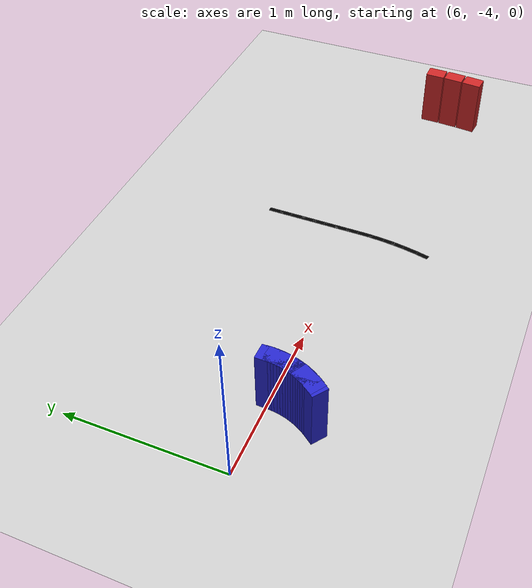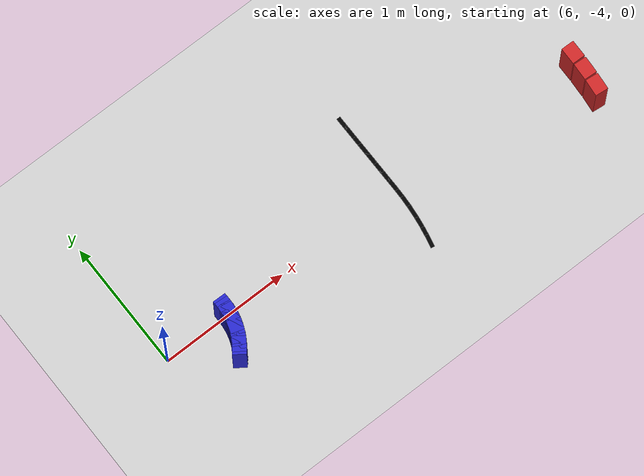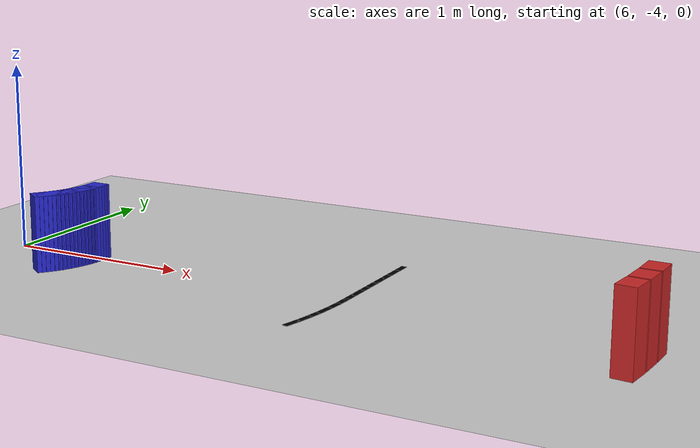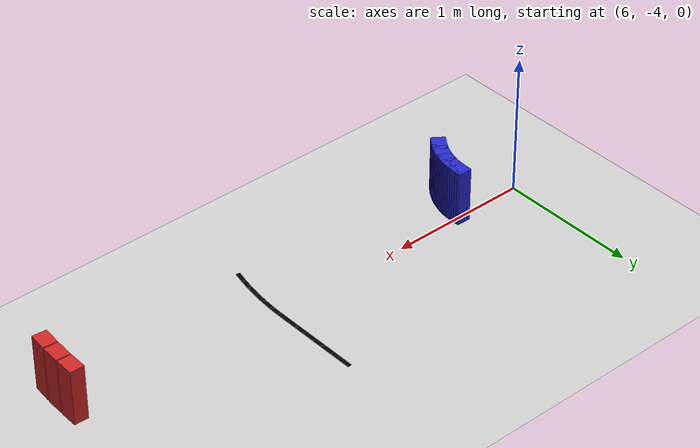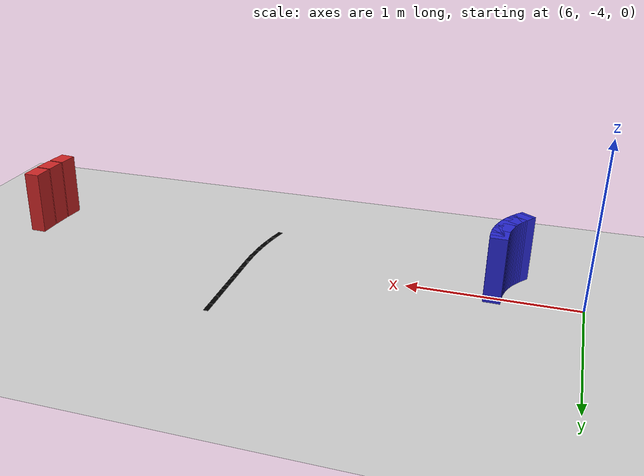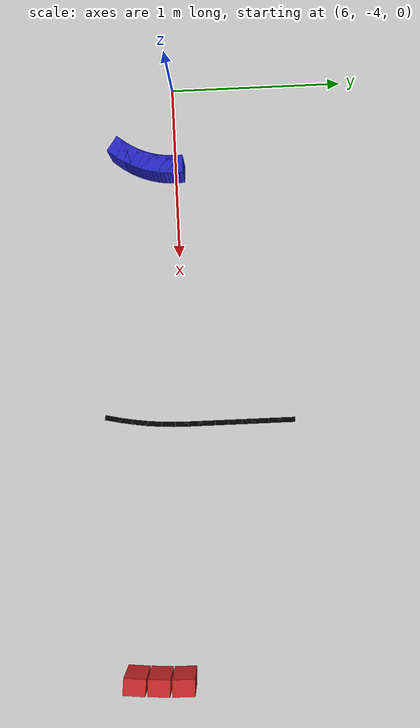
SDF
<sdf version="1.6">
 <world name="new_race_track">
  <include><uri>model://ground_plane</uri></include>
  <include><uri>model://sun</uri></include>
  <model name="race_track">
   <static>true</static>
   <link name="wall_link_223">
    <collision name="c"><geometry><box><size>0.1305 0.1 0.4</size></box></geometry></collision>
    <visual name="v">
     <geometry><box><size>0.1305 0.1 0.4</size></box></geometry>
     <material><ambient>0.15 0.15 0.8 1</ambient><diffuse>0.15 0.15 0.8 1</diffuse></material>
    </visual>
    <pose>6.4054 -4.2920 0.200 0 0 0.9465</pose>
   </link>
   <link name="wall_link_224">
    <collision name="c"><geometry><box><size>0.1305 0.1 0.4</size></box></geometry></collision>
    <visual name="v">
     <geometry><box><size>0.1305 0.1 0.4</size></box></geometry>
     <material><ambient>0.15 0.15 0.8 1</ambient><diffuse>0.15 0.15 0.8 1</diffuse></material>
    </visual>
    <pose>6.4168 -4.2755 0.200 0 0 0.9868</pose>
   </link>
   <link name="wall_link_225">
    <collision name="c"><geometry><box><size>0.1305 0.1 0.4</size></box></geometry></collision>
    <visual name="v">
     <geometry><box><size>0.1305 0.1 0.4</size></box></geometry>
     <material><ambient>0.15 0.15 0.8 1</ambient><diffuse>0.15 0.15 0.8 1</diffuse></material>
    </visual>
    <pose>6.4275 -4.2585 0.200 0 0 1.0271</pose>
   </link>
   <link name="wall_link_226">
    <collision name="c"><geometry><box><size>0.1305 0.1 0.4</size></box></geometry></collision>
    <visual name="v">
     <geometry><box><size>0.1305 0.1 0.4</size></box></geometry>
     <material><ambient>0.15 0.15 0.8 1</ambient><diffuse>0.15 0.15 0.8 1</diffuse></material>
    </visual>
    <pose>6.4376 -4.2410 0.200 0 0 1.0673</pose>
   </link>
   <link name="wall_link_227">
    <collision name="c"><geometry><box><size>0.1305 0.1 0.4</size></box></geometry></collision>
    <visual name="v">
     <geometry><box><size>0.1305 0.1 0.4</size></box></geometry>
     <material><ambient>0.15 0.15 0.8 1</ambient><diffuse>0.15 0.15 0.8 1</diffuse></material>
    </visual>
    <pose>6.4470 -4.2232 0.200 0 0 1.1076</pose>
   </link>
   <link name="wall_link_228">
    <collision name="c"><geometry><box><size>0.1305 0.1 0.4</size></box></geometry></collision>
    <visual name="v">
     <geometry><box><size>0.1305 0.1 0.4</size></box></geometry>
     <material><ambient>0.15 0.15 0.8 1</ambient><diffuse>0.15 0.15 0.8 1</diffuse></material>
    </visual>
    <pose>6.4556 -4.2050 0.200 0 0 1.1479</pose>
   </link>
   <link name="wall_link_229">
    <collision name="c"><geometry><box><size>0.1305 0.1 0.4</size></box></geometry></collision>
    <visual name="v">
     <geometry><box><size>0.1305 0.1 0.4</size></box></geometry>
     <material><ambient>0.15 0.15 0.8 1</ambient><diffuse>0.15 0.15 0.8 1</diffuse></material>
    </visual>
    <pose>6.4635 -4.1865 0.200 0 0 1.1882</pose>
   </link>
   <link name="wall_link_230">
    <collision name="c"><geometry><box><size>0.1305 0.1 0.4</size></box></geometry></collision>
    <visual name="v">
     <geometry><box><size>0.1305 0.1 0.4</size></box></geometry>
     <material><ambient>0.15 0.15 0.8 1</ambient><diffuse>0.15 0.15 0.8 1</diffuse></material>
    </visual>
    <pose>6.4706 -4.1677 0.200 0 0 1.2284</pose>
   </link>
   <link name="wall_link_231">
    <collision name="c"><geometry><box><size>0.1305 0.1 0.4</size></box></geometry></collision>
    <visual name="v">
     <geometry><box><size>0.1305 0.1 0.4</size></box></geometry>
     <material><ambient>0.15 0.15 0.8 1</ambient><diffuse>0.15 0.15 0.8 1</diffuse></material>
    </visual>
    <pose>6.4770 -4.1486 0.200 0 0 1.2687</pose>
   </link>
   <link name="wall_link_232">
    <collision name="c"><geometry><box><size>0.1305 0.1 0.4</size></box></geometry></collision>
    <visual name="v">
     <geometry><box><size>0.1305 0.1 0.4</size></box></geometry>
     <material><ambient>0.15 0.15 0.8 1</ambient><diffuse>0.15 0.15 0.8 1</diffuse></material>
    </visual>
    <pose>6.4826 -4.1293 0.200 0 0 1.3090</pose>
   </link>
   <link name="wall_link_233">
    <collision name="c"><geometry><box><size>0.1305 0.1 0.4</size></box></geometry></collision>
    <visual name="v">
     <geometry><box><size>0.1305 0.1 0.4</size></box></geometry>
     <material><ambient>0.15 0.15 0.8 1</ambient><diffuse>0.15 0.15 0.8 1</diffuse></material>
    </visual>
    <pose>6.4874 -4.1098 0.200 0 0 1.3493</pose>
   </link>
   <link name="wall_link_234">
    <collision name="c"><geometry><box><size>0.1305 0.1 0.4</size></box></geometry></collision>
    <visual name="v">
     <geometry><box><size>0.1305 0.1 0.4</size></box></geometry>
     <material><ambient>0.15 0.15 0.8 1</ambient><diffuse>0.15 0.15 0.8 1</diffuse></material>
    </visual>
    <pose>6.4914 -4.0901 0.200 0 0 1.3896</pose>
   </link>
   <link name="wall_link_235">
    <collision name="c"><geometry><box><size>0.1305 0.1 0.4</size></box></geometry></collision>
    <visual name="v">
     <geometry><box><size>0.1305 0.1 0.4</size></box></geometry>
     <material><ambient>0.15 0.15 0.8 1</ambient><diffuse>0.15 0.15 0.8 1</diffuse></material>
    </visual>
    <pose>6.4946 -4.0702 0.200 0 0 1.4298</pose>
   </link>
   <link name="wall_link_236">
    <collision name="c"><geometry><box><size>0.1305 0.1 0.4</size></box></geometry></collision>
    <visual name="v">
     <geometry><box><size>0.1305 0.1 0.4</size></box></geometry>
     <material><ambient>0.15 0.15 0.8 1</ambient><diffuse>0.15 0.15 0.8 1</diffuse></material>
    </visual>
    <pose>6.4971 -4.0502 0.200 0 0 1.4701</pose>
   </link>
   <link name="wall_link_237">
    <collision name="c"><geometry><box><size>0.1305 0.1 0.4</size></box></geometry></collision>
    <visual name="v">
     <geometry><box><size>0.1305 0.1 0.4</size></box></geometry>
     <material><ambient>0.15 0.15 0.8 1</ambient><diffuse>0.15 0.15 0.8 1</diffuse></material>
    </visual>
    <pose>6.4987 -4.0302 0.200 0 0 1.5104</pose>
   </link>
   <link name="wall_link_238">
    <collision name="c"><geometry><box><size>0.1305 0.1 0.4</size></box></geometry></collision>
    <visual name="v">
     <geometry><box><size>0.1305 0.1 0.4</size></box></geometry>
     <material><ambient>0.15 0.15 0.8 1</ambient><diffuse>0.15 0.15 0.8 1</diffuse></material>
    </visual>
    <pose>6.4995 -4.0101 0.200 0 0 1.5507</pose>
   </link>
   <link name="wall_link_648">
    <collision name="c"><geometry><box><size>0.1305 0.1 0.4</size></box></geometry></collision>
    <visual name="v">
     <geometry><box><size>0.1305 0.1 0.4</size></box></geometry>
     <material><ambient>0.8 0.15 0.15 1</ambient><diffuse>0.8 0.15 0.15 1</diffuse></material>
    </visual>
    <pose>9.4819 -4.3518 0.200 0 0 1.4701</pose>
   </link>
   <link name="wall_link_649">
    <collision name="c"><geometry><box><size>0.1305 0.1 0.4</size></box></geometry></collision>
    <visual name="v">
     <geometry><box><size>0.1305 0.1 0.4</size></box></geometry>
     <material><ambient>0.8 0.15 0.15 1</ambient><diffuse>0.8 0.15 0.15 1</diffuse></material>
    </visual>
    <pose>9.4932 -4.2113 0.200 0 0 1.5104</pose>
   </link>
   <link name="wall_link_650">
    <collision name="c"><geometry><box><size>0.1305 0.1 0.4</size></box></geometry></collision>
    <visual name="v">
     <geometry><box><size>0.1305 0.1 0.4</size></box></geometry>
     <material><ambient>0.8 0.15 0.15 1</ambient><diffuse>0.8 0.15 0.15 1</diffuse></material>
    </visual>
    <pose>9.4989 -4.0705 0.200 0 0 1.5507</pose>
   </link>
   <link name="line_link_1214">
    <visual name="v">
     <geometry><box><size>0.1005 0.03 0.002</size></box></geometry>
     <material><ambient>0 0 0 1</ambient><diffuse>0 0 0 1</diffuse></material>
    </visual>
    <pose>7.9507 -4.4393 0.002 0 0 1.3493</pose>
   </link>
   <link name="line_link_1215">
    <visual name="v">
     <geometry><box><size>0.1005 0.03 0.002</size></box></geometry>
     <material><ambient>0 0 0 1</ambient><diffuse>0 0 0 1</diffuse></material>
    </visual>
    <pose>7.9668 -4.3604 0.002 0 0 1.3896</pose>
   </link>
   <link name="line_link_1216">
    <visual name="v">
     <geometry><box><size>0.1005 0.03 0.002</size></box></geometry>
     <material><ambient>0 0 0 1</ambient><diffuse>0 0 0 1</diffuse></material>
    </visual>
    <pose>7.9798 -4.2809 0.002 0 0 1.4298</pose>
   </link>
   <link name="line_link_1217">
    <visual name="v">
     <geometry><box><size>0.1005 0.03 0.002</size></box></geometry>
     <material><ambient>0 0 0 1</ambient><diffuse>0 0 0 1</diffuse></material>
    </visual>
    <pose>7.9895 -4.2010 0.002 0 0 1.4701</pose>
   </link>
   <link name="line_link_1218">
    <visual name="v">
     <geometry><box><size>0.1005 0.03 0.002</size></box></geometry>
     <material><ambient>0 0 0 1</ambient><diffuse>0 0 0 1</diffuse></material>
    </visual>
    <pose>7.9959 -4.1207 0.002 0 0 1.5104</pose>
   </link>
   <link name="line_link_1219">
    <visual name="v">
     <geometry><box><size>0.1005 0.03 0.002</size></box></geometry>
     <material><ambient>0 0 0 1</ambient><diffuse>0 0 0 1</diffuse></material>
    </visual>
    <pose>7.9992 -4.0403 0.002 0 0 1.5507</pose>
   </link>
   <link name="line_link_1220">
    <visual name="v">
     <geometry><box><size>0.1000 0.03 0.002</size></box></geometry>
     <material><ambient>0 0 0 1</ambient><diffuse>0 0 0 1</diffuse></material>
    </visual>
    <pose>8.0000 -3.9600 0.002 0 0 1.5708</pose>
   </link>
   <link name="line_link_1221">
    <visual name="v">
     <geometry><box><size>0.1000 0.03 0.002</size></box></geometry>
     <material><ambient>0 0 0 1</ambient><diffuse>0 0 0 1</diffuse></material>
    </visual>
    <pose>8.0000 -3.8800 0.002 0 0 1.5708</pose>
   </link>
   <link name="line_link_1222">
    <visual name="v">
     <geometry><box><size>0.1000 0.03 0.002</size></box></geometry>
     <material><ambient>0 0 0 1</ambient><diffuse>0 0 0 1</diffuse></material>
    </visual>
    <pose>8.0000 -3.8000 0.002 0 0 1.5708</pose>
   </link>
   <link name="line_link_1223">
    <visual name="v">
     <geometry><box><size>0.1000 0.03 0.002</size></box></geometry>
     <material><ambient>0 0 0 1</ambient><diffuse>0 0 0 1</diffuse></material>
    </visual>
    <pose>8.0000 -3.7200 0.002 0 0 1.5708</pose>
   </link>
   <link name="line_link_1224">
    <visual name="v">
     <geometry><box><size>0.1000 0.03 0.002</size></box></geometry>
     <material><ambient>0 0 0 1</ambient><diffuse>0 0 0 1</diffuse></material>
    </visual>
    <pose>8.0000 -3.6400 0.002 0 0 1.5708</pose>
   </link>
   <link name="line_link_1225">
    <visual name="v">
     <geometry><box><size>0.1000 0.03 0.002</size></box></geometry>
     <material><ambient>0 0 0 1</ambient><diffuse>0 0 0 1</diffuse></material>
    </visual>
    <pose>8.0000 -3.5600 0.002 0 0 1.5708</pose>
   </link>
   <link name="line_link_1226">
    <visual name="v">
     <geometry><box><size>0.1000 0.03 0.002</size></box></geometry>
     <material><ambient>0 0 0 1</ambient><diffuse>0 0 0 1</diffuse></material>
    </visual>
    <pose>8.0000 -3.4800 0.002 0 0 1.5708</pose>
   </link>
   <link name="line_link_1227">
    <visual name="v">
     <geometry><box><size>0.1000 0.03 0.002</size></box></geometry>
     <material><ambient>0 0 0 1</ambient><diffuse>0 0 0 1</diffuse></material>
    </visual>
    <pose>8.0000 -3.4000 0.002 0 0 1.5708</pose>
   </link>
  </model>
 </world>
</sdf>
